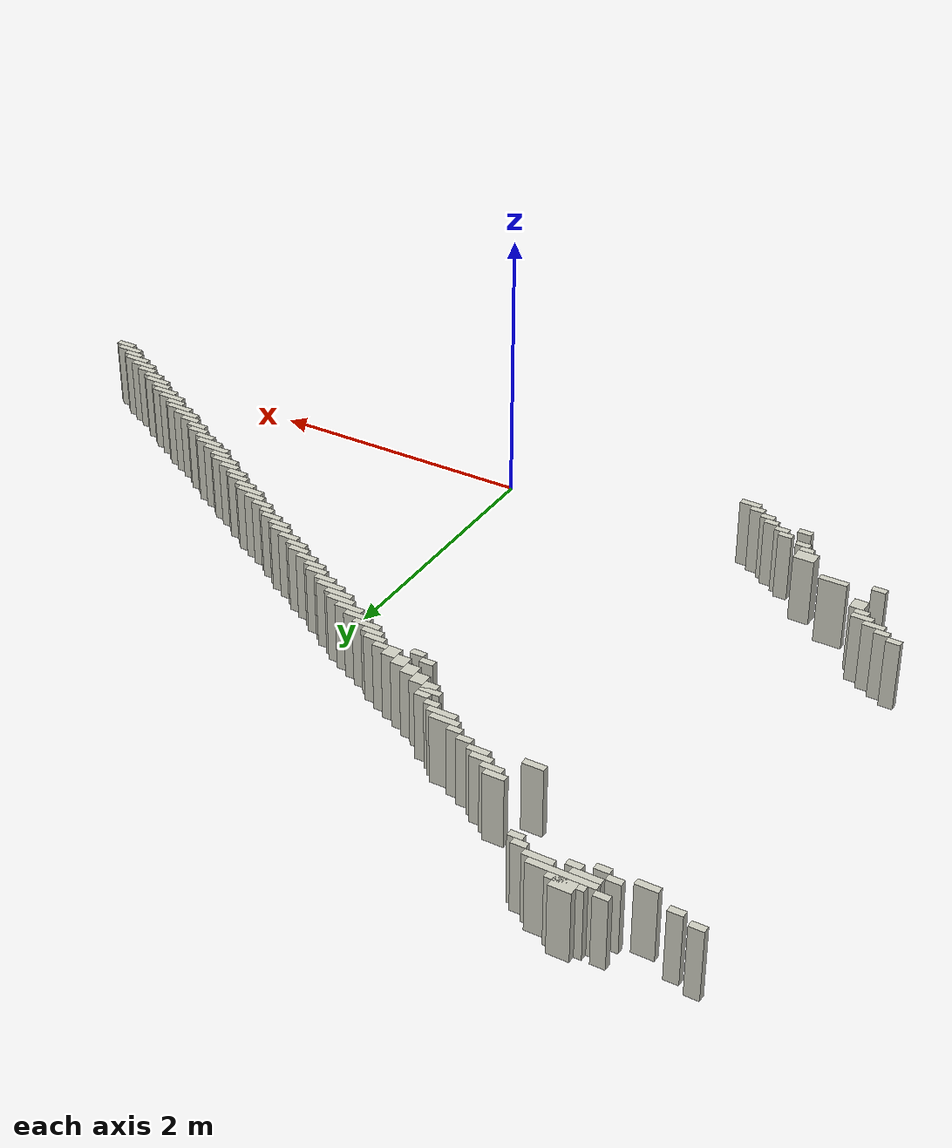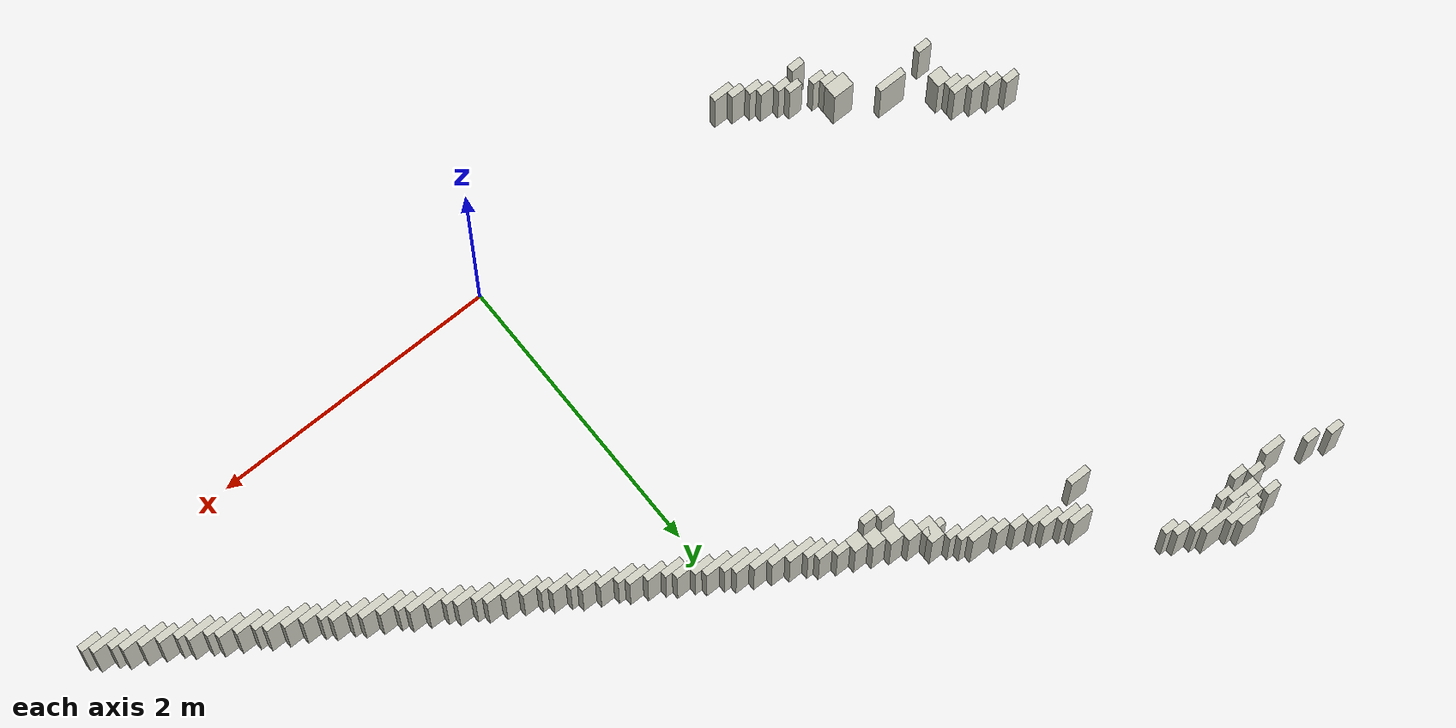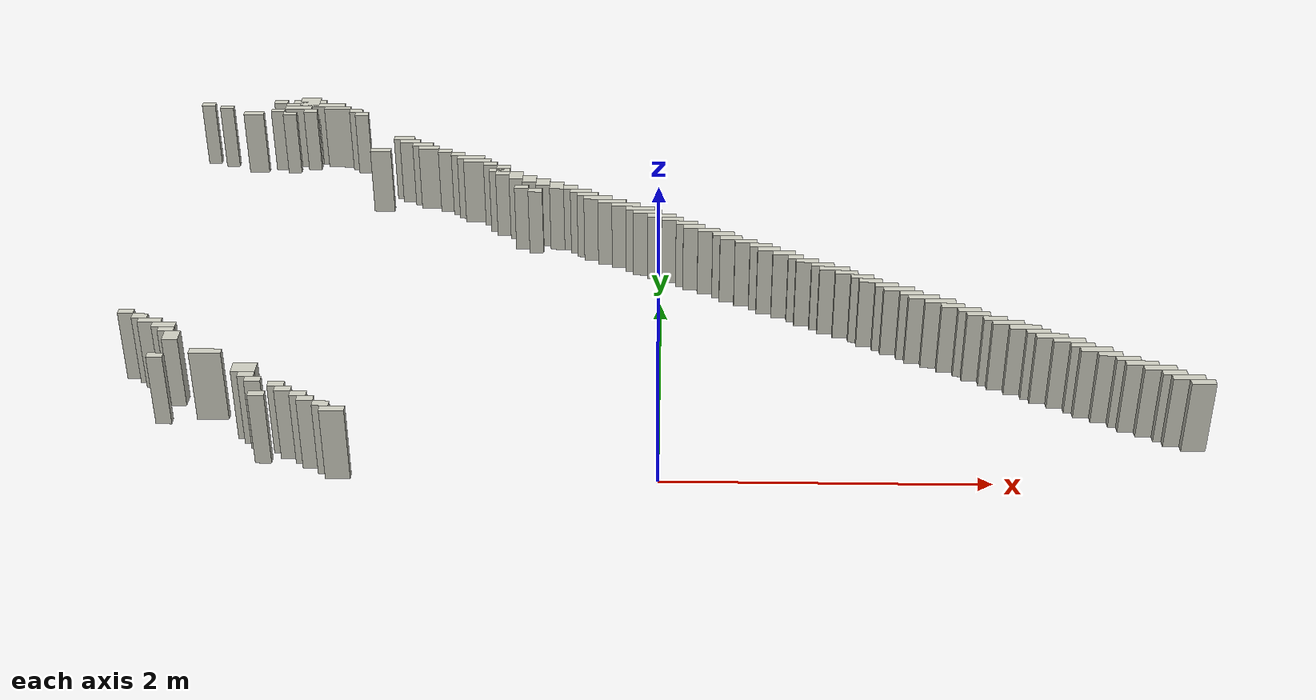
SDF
<sdf version="1.7">
 <world name="my_map_world">
  <model name="wall_0">
   <static>1</static>
   <pose>-2.725 4.125 0.25 0 -0 0</pose>
   <link name="link">
    <collision name="collision"><geometry><box><size>0.15 0.15 0.5</size></box></geometry></collision>
    <visual name="visual">
     <geometry><box><size>0.15 0.15 0.5</size></box></geometry>
     <material>
      <script><uri>file://media/materials/scripts/gazebo.material</uri><name>Gazebo/PaintedWall</name></script>
     </material>
    </visual>
   </link>
  </model>
  <model name="wall_1">
   <static>1</static>
   <pose>-2.95 4.125 0.25 0 -0 0</pose>
   <link name="link">
    <collision name="collision"><geometry><box><size>0.1 0.05 0.5</size></box></geometry></collision>
    <visual name="visual">
     <geometry><box><size>0.1 0.05 0.5</size></box></geometry>
     <material>
      <script><uri>file://media/materials/scripts/gazebo.material</uri><name>Gazebo/PaintedWall</name></script>
     </material>
    </visual>
   </link>
  </model>
  <model name="wall_2">
   <static>1</static>
   <pose>-2.725 4.125 0.25 0 -0 0</pose>
   <link name="link">
    <collision name="collision"><geometry><box><size>0.25 0.05 0.5</size></box></geometry></collision>
    <visual name="visual">
     <geometry><box><size>0.25 0.05 0.5</size></box></geometry>
     <material>
      <script><uri>file://media/materials/scripts/gazebo.material</uri><name>Gazebo/PaintedWall</name></script>
     </material>
    </visual>
   </link>
  </model>
  <model name="wall_3">
   <static>1</static>
   <pose>-3.5 4.075 0.25 0 -0 0</pose>
   <link name="link">
    <collision name="collision"><geometry><box><size>0.1 0.05 0.5</size></box></geometry></collision>
    <visual name="visual">
     <geometry><box><size>0.1 0.05 0.5</size></box></geometry>
     <material>
      <script><uri>file://media/materials/scripts/gazebo.material</uri><name>Gazebo/PaintedWall</name></script>
     </material>
    </visual>
   </link>
  </model>
  <model name="wall_4">
   <static>1</static>
   <pose>-2.675 4.075 0.25 0 -0 0</pose>
   <link name="link">
    <collision name="collision"><geometry><box><size>0.45 0.05 0.5</size></box></geometry></collision>
    <visual name="visual">
     <geometry><box><size>0.45 0.05 0.5</size></box></geometry>
     <material>
      <script><uri>file://media/materials/scripts/gazebo.material</uri><name>Gazebo/PaintedWall</name></script>
     </material>
    </visual>
   </link>
  </model>
  <model name="wall_5">
   <static>1</static>
   <pose>-3.35 4.025 0.25 0 -0 0</pose>
   <link name="link">
    <collision name="collision"><geometry><box><size>0.1 0.05 0.5</size></box></geometry></collision>
    <visual name="visual">
     <geometry><box><size>0.1 0.05 0.5</size></box></geometry>
     <material>
      <script><uri>file://media/materials/scripts/gazebo.material</uri><name>Gazebo/PaintedWall</name></script>
     </material>
    </visual>
   </link>
  </model>
  <model name="wall_6">
   <static>1</static>
   <pose>-2.8 4.025 0.25 0 -0 0</pose>
   <link name="link">
    <collision name="collision"><geometry><box><size>0.2 0.05 0.5</size></box></geometry></collision>
    <visual name="visual">
     <geometry><box><size>0.2 0.05 0.5</size></box></geometry>
     <material>
      <script><uri>file://media/materials/scripts/gazebo.material</uri><name>Gazebo/PaintedWall</name></script>
     </material>
    </visual>
   </link>
  </model>
  <model name="wall_7">
   <static>1</static>
   <pose>-2.5 4.025 0.25 0 -0 0</pose>
   <link name="link">
    <collision name="collision"><geometry><box><size>0.2 0.05 0.5</size></box></geometry></collision>
    <visual name="visual">
     <geometry><box><size>0.2 0.05 0.5</size></box></geometry>
     <material>
      <script><uri>file://media/materials/scripts/gazebo.material</uri><name>Gazebo/PaintedWall</name></script>
     </material>
    </visual>
   </link>
  </model>
  <model name="wall_8">
   <static>1</static>
   <pose>-2.95 3.975 0.25 0 -0 0</pose>
   <link name="link">
    <collision name="collision"><geometry><box><size>0.1 0.05 0.5</size></box></geometry></collision>
    <visual name="visual">
     <geometry><box><size>0.1 0.05 0.5</size></box></geometry>
     <material>
      <script><uri>file://media/materials/scripts/gazebo.material</uri><name>Gazebo/PaintedWall</name></script>
     </material>
    </visual>
   </link>
  </model>
  <model name="wall_9">
   <static>1</static>
   <pose>-2.7 3.975 0.25 0 -0 0</pose>
   <link name="link">
    <collision name="collision"><geometry><box><size>0.1 0.05 0.5</size></box></geometry></collision>
    <visual name="visual">
     <geometry><box><size>0.1 0.05 0.5</size></box></geometry>
     <material>
      <script><uri>file://media/materials/scripts/gazebo.material</uri><name>Gazebo/PaintedWall</name></script>
     </material>
    </visual>
   </link>
  </model>
  <model name="wall_10">
   <static>1</static>
   <pose>-2.35 3.975 0.25 0 -0 0</pose>
   <link name="link">
    <collision name="collision"><geometry><box><size>0.1 0.05 0.5</size></box></geometry></collision>
    <visual name="visual">
     <geometry><box><size>0.1 0.05 0.5</size></box></geometry>
     <material>
      <script><uri>file://media/materials/scripts/gazebo.material</uri><name>Gazebo/PaintedWall</name></script>
     </material>
    </visual>
   </link>
  </model>
  <model name="wall_11">
   <static>1</static>
   <pose>-3.125 3.925 0.25 0 -0 0</pose>
   <link name="link">
    <collision name="collision"><geometry><box><size>0.15 0.05 0.5</size></box></geometry></collision>
    <visual name="visual">
     <geometry><box><size>0.15 0.05 0.5</size></box></geometry>
     <material>
      <script><uri>file://media/materials/scripts/gazebo.material</uri><name>Gazebo/PaintedWall</name></script>
     </material>
    </visual>
   </link>
  </model>
  <model name="wall_12">
   <static>1</static>
   <pose>-2.85 3.925 0.25 0 -0 0</pose>
   <link name="link">
    <collision name="collision"><geometry><box><size>0.1 0.05 0.5</size></box></geometry></collision>
    <visual name="visual">
     <geometry><box><size>0.1 0.05 0.5</size></box></geometry>
     <material>
      <script><uri>file://media/materials/scripts/gazebo.material</uri><name>Gazebo/PaintedWall</name></script>
     </material>
    </visual>
   </link>
  </model>
  <model name="wall_13">
   <static>1</static>
   <pose>-2.3 3.925 0.25 0 -0 0</pose>
   <link name="link">
    <collision name="collision"><geometry><box><size>0.1 0.05 0.5</size></box></geometry></collision>
    <visual name="visual">
     <geometry><box><size>0.1 0.05 0.5</size></box></geometry>
     <material>
      <script><uri>file://media/materials/scripts/gazebo.material</uri><name>Gazebo/PaintedWall</name></script>
     </material>
    </visual>
   </link>
  </model>
  <model name="wall_14">
   <static>1</static>
   <pose>-1.925 3.525 0.25 0 -0 0</pose>
   <link name="link">
    <collision name="collision"><geometry><box><size>0.15 0.05 0.5</size></box></geometry></collision>
    <visual name="visual">
     <geometry><box><size>0.15 0.05 0.5</size></box></geometry>
     <material>
      <script><uri>file://media/materials/scripts/gazebo.material</uri><name>Gazebo/PaintedWall</name></script>
     </material>
    </visual>
   </link>
  </model>
  <model name="wall_15">
   <static>1</static>
   <pose>-1.875 3.475 0.25 0 -0 0</pose>
   <link name="link">
    <collision name="collision"><geometry><box><size>0.15 0.05 0.5</size></box></geometry></collision>
    <visual name="visual">
     <geometry><box><size>0.15 0.05 0.5</size></box></geometry>
     <material>
      <script><uri>file://media/materials/scripts/gazebo.material</uri><name>Gazebo/PaintedWall</name></script>
     </material>
    </visual>
   </link>
  </model>
  <model name="wall_16">
   <static>1</static>
   <pose>-1.775 3.425 0.25 0 -0 0</pose>
   <link name="link">
    <collision name="collision"><geometry><box><size>0.15 0.05 0.5</size></box></geometry></collision>
    <visual name="visual">
     <geometry><box><size>0.15 0.05 0.5</size></box></geometry>
     <material>
      <script><uri>file://media/materials/scripts/gazebo.material</uri><name>Gazebo/PaintedWall</name></script>
     </material>
    </visual>
   </link>
  </model>
  <model name="wall_17">
   <static>1</static>
   <pose>-1.725 3.375 0.25 0 -0 0</pose>
   <link name="link">
    <collision name="collision"><geometry><box><size>0.15 0.05 0.5</size></box></geometry></collision>
    <visual name="visual">
     <geometry><box><size>0.15 0.05 0.5</size></box></geometry>
     <material>
      <script><uri>file://media/materials/scripts/gazebo.material</uri><name>Gazebo/PaintedWall</name></script>
     </material>
    </visual>
   </link>
  </model>
  <model name="wall_18">
   <static>1</static>
   <pose>-2.075 3.325 0.25 0 -0 0</pose>
   <link name="link">
    <collision name="collision"><geometry><box><size>0.15 0.05 0.5</size></box></geometry></collision>
    <visual name="visual">
     <geometry><box><size>0.15 0.05 0.5</size></box></geometry>
     <material>
      <script><uri>file://media/materials/scripts/gazebo.material</uri><name>Gazebo/PaintedWall</name></script>
     </material>
    </visual>
   </link>
  </model>
  <model name="wall_19">
   <static>1</static>
   <pose>-1.6 3.325 0.25 0 -0 0</pose>
   <link name="link">
    <collision name="collision"><geometry><box><size>0.1 0.05 0.5</size></box></geometry></collision>
    <visual name="visual">
     <geometry><box><size>0.1 0.05 0.5</size></box></geometry>
     <material>
      <script><uri>file://media/materials/scripts/gazebo.material</uri><name>Gazebo/PaintedWall</name></script>
     </material>
    </visual>
   </link>
  </model>
  <model name="wall_20">
   <static>1</static>
   <pose>-1.5 3.275 0.25 0 -0 0</pose>
   <link name="link">
    <collision name="collision"><geometry><box><size>0.1 0.05 0.5</size></box></geometry></collision>
    <visual name="visual">
     <geometry><box><size>0.1 0.05 0.5</size></box></geometry>
     <material>
      <script><uri>file://media/materials/scripts/gazebo.material</uri><name>Gazebo/PaintedWall</name></script>
     </material>
    </visual>
   </link>
  </model>
  <model name="wall_21">
   <static>1</static>
   <pose>-1.4 3.225 0.25 0 -0 0</pose>
   <link name="link">
    <collision name="collision"><geometry><box><size>0.2 0.05 0.5</size></box></geometry></collision>
    <visual name="visual">
     <geometry><box><size>0.2 0.05 0.5</size></box></geometry>
     <material>
      <script><uri>file://media/materials/scripts/gazebo.material</uri><name>Gazebo/PaintedWall</name></script>
     </material>
    </visual>
   </link>
  </model>
  <model name="wall_22">
   <static>1</static>
   <pose>-1.35 3.175 0.25 0 -0 0</pose>
   <link name="link">
    <collision name="collision"><geometry><box><size>0.2 0.05 0.5</size></box></geometry></collision>
    <visual name="visual">
     <geometry><box><size>0.2 0.05 0.5</size></box></geometry>
     <material>
      <script><uri>file://media/materials/scripts/gazebo.material</uri><name>Gazebo/PaintedWall</name></script>
     </material>
    </visual>
   </link>
  </model>
  <model name="wall_23">
   <static>1</static>
   <pose>-1.25 3.125 0.25 0 -0 0</pose>
   <link name="link">
    <collision name="collision"><geometry><box><size>0.1 0.05 0.5</size></box></geometry></collision>
    <visual name="visual">
     <geometry><box><size>0.1 0.05 0.5</size></box></geometry>
     <material>
      <script><uri>file://media/materials/scripts/gazebo.material</uri><name>Gazebo/PaintedWall</name></script>
     </material>
    </visual>
   </link>
  </model>
  <model name="wall_24">
   <static>1</static>
   <pose>-1.15 3.025 0.25 0 -0 0</pose>
   <link name="link">
    <collision name="collision"><geometry><box><size>0.1 0.15 0.5</size></box></geometry></collision>
    <visual name="visual">
     <geometry><box><size>0.1 0.15 0.5</size></box></geometry>
     <material>
      <script><uri>file://media/materials/scripts/gazebo.material</uri><name>Gazebo/PaintedWall</name></script>
     </material>
    </visual>
   </link>
  </model>
  <model name="wall_25">
   <static>1</static>
   <pose>-1.175 3.025 0.25 0 -0 0</pose>
   <link name="link">
    <collision name="collision"><geometry><box><size>0.15 0.05 0.5</size></box></geometry></collision>
    <visual name="visual">
     <geometry><box><size>0.15 0.05 0.5</size></box></geometry>
     <material>
      <script><uri>file://media/materials/scripts/gazebo.material</uri><name>Gazebo/PaintedWall</name></script>
     </material>
    </visual>
   </link>
  </model>
  <model name="wall_26">
   <static>1</static>
   <pose>-1.05 2.95 0.25 0 -0 0</pose>
   <link name="link">
    <collision name="collision"><geometry><box><size>0.1 0.1 0.5</size></box></geometry></collision>
    <visual name="visual">
     <geometry><box><size>0.1 0.1 0.5</size></box></geometry>
     <material>
      <script><uri>file://media/materials/scripts/gazebo.material</uri><name>Gazebo/PaintedWall</name></script>
     </material>
    </visual>
   </link>
  </model>
  <model name="wall_27">
   <static>1</static>
   <pose>-0.95 2.9 0.25 0 -0 0</pose>
   <link name="link">
    <collision name="collision"><geometry><box><size>0.1 0.1 0.5</size></box></geometry></collision>
    <visual name="visual">
     <geometry><box><size>0.1 0.1 0.5</size></box></geometry>
     <material>
      <script><uri>file://media/materials/scripts/gazebo.material</uri><name>Gazebo/PaintedWall</name></script>
     </material>
    </visual>
   </link>
  </model>
  <model name="wall_28">
   <static>1</static>
   <pose>-0.85 2.85 0.25 0 -0 0</pose>
   <link name="link">
    <collision name="collision"><geometry><box><size>0.1 0.1 0.5</size></box></geometry></collision>
    <visual name="visual">
     <geometry><box><size>0.1 0.1 0.5</size></box></geometry>
     <material>
      <script><uri>file://media/materials/scripts/gazebo.material</uri><name>Gazebo/PaintedWall</name></script>
     </material>
    </visual>
   </link>
  </model>
  <model name="wall_29">
   <static>1</static>
   <pose>-0.75 2.8 0.25 0 -0 0</pose>
   <link name="link">
    <collision name="collision"><geometry><box><size>0.1 0.1 0.5</size></box></geometry></collision>
    <visual name="visual">
     <geometry><box><size>0.1 0.1 0.5</size></box></geometry>
     <material>
      <script><uri>file://media/materials/scripts/gazebo.material</uri><name>Gazebo/PaintedWall</name></script>
     </material>
    </visual>
   </link>
  </model>
  <model name="wall_30">
   <static>1</static>
   <pose>-1 2.775 0.25 0 -0 0</pose>
   <link name="link">
    <collision name="collision"><geometry><box><size>0.1 0.05 0.5</size></box></geometry></collision>
    <visual name="visual">
     <geometry><box><size>0.1 0.05 0.5</size></box></geometry>
     <material>
      <script><uri>file://media/materials/scripts/gazebo.material</uri><name>Gazebo/PaintedWall</name></script>
     </material>
    </visual>
   </link>
  </model>
  <model name="wall_31">
   <static>1</static>
   <pose>-0.65 2.775 0.25 0 -0 0</pose>
   <link name="link">
    <collision name="collision"><geometry><box><size>0.1 0.05 0.5</size></box></geometry></collision>
    <visual name="visual">
     <geometry><box><size>0.1 0.05 0.5</size></box></geometry>
     <material>
      <script><uri>file://media/materials/scripts/gazebo.material</uri><name>Gazebo/PaintedWall</name></script>
     </material>
    </visual>
   </link>
  </model>
  <model name="wall_32">
   <static>1</static>
   <pose>-0.9 2.725 0.25 0 -0 0</pose>
   <link name="link">
    <collision name="collision"><geometry><box><size>0.1 0.05 0.5</size></box></geometry></collision>
    <visual name="visual">
     <geometry><box><size>0.1 0.05 0.5</size></box></geometry>
     <material>
      <script><uri>file://media/materials/scripts/gazebo.material</uri><name>Gazebo/PaintedWall</name></script>
     </material>
    </visual>
   </link>
  </model>
  <model name="wall_33">
   <static>1</static>
   <pose>-0.575 2.725 0.25 0 -0 0</pose>
   <link name="link">
    <collision name="collision"><geometry><box><size>0.15 0.05 0.5</size></box></geometry></collision>
    <visual name="visual">
     <geometry><box><size>0.15 0.05 0.5</size></box></geometry>
     <material>
      <script><uri>file://media/materials/scripts/gazebo.material</uri><name>Gazebo/PaintedWall</name></script>
     </material>
    </visual>
   </link>
  </model>
  <model name="wall_34">
   <static>1</static>
   <pose>-0.525 2.675 0.25 0 -0 0</pose>
   <link name="link">
    <collision name="collision"><geometry><box><size>0.15 0.05 0.5</size></box></geometry></collision>
    <visual name="visual">
     <geometry><box><size>0.15 0.05 0.5</size></box></geometry>
     <material>
      <script><uri>file://media/materials/scripts/gazebo.material</uri><name>Gazebo/PaintedWall</name></script>
     </material>
    </visual>
   </link>
  </model>
  <model name="wall_35">
   <static>1</static>
   <pose>-0.45 2.625 0.25 0 -0 0</pose>
   <link name="link">
    <collision name="collision"><geometry><box><size>0.2 0.05 0.5</size></box></geometry></collision>
    <visual name="visual">
     <geometry><box><size>0.2 0.05 0.5</size></box></geometry>
     <material>
      <script><uri>file://media/materials/scripts/gazebo.material</uri><name>Gazebo/PaintedWall</name></script>
     </material>
    </visual>
   </link>
  </model>
  <model name="wall_36">
   <static>1</static>
   <pose>-0.35 2.575 0.25 0 -0 0</pose>
   <link name="link">
    <collision name="collision"><geometry><box><size>0.2 0.05 0.5</size></box></geometry></collision>
    <visual name="visual">
     <geometry><box><size>0.2 0.05 0.5</size></box></geometry>
     <material>
      <script><uri>file://media/materials/scripts/gazebo.material</uri><name>Gazebo/PaintedWall</name></script>
     </material>
    </visual>
   </link>
  </model>
  <model name="wall_37">
   <static>1</static>
   <pose>-0.25 2.525 0.25 0 -0 0</pose>
   <link name="link">
    <collision name="collision"><geometry><box><size>0.2 0.05 0.5</size></box></geometry></collision>
    <visual name="visual">
     <geometry><box><size>0.2 0.05 0.5</size></box></geometry>
     <material>
      <script><uri>file://media/materials/scripts/gazebo.material</uri><name>Gazebo/PaintedWall</name></script>
     </material>
    </visual>
   </link>
  </model>
  <model name="wall_38">
   <static>1</static>
   <pose>-0.15 2.475 0.25 0 -0 0</pose>
   <link name="link">
    <collision name="collision"><geometry><box><size>0.2 0.05 0.5</size></box></geometry></collision>
    <visual name="visual">
     <geometry><box><size>0.2 0.05 0.5</size></box></geometry>
     <material>
      <script><uri>file://media/materials/scripts/gazebo.material</uri><name>Gazebo/PaintedWall</name></script>
     </material>
    </visual>
   </link>
  </model>
  <model name="wall_39">
   <static>1</static>
   <pose>-0.1 2.425 0.25 0 -0 0</pose>
   <link name="link">
    <collision name="collision"><geometry><box><size>0.2 0.05 0.5</size></box></geometry></collision>
    <visual name="visual">
     <geometry><box><size>0.2 0.05 0.5</size></box></geometry>
     <material>
      <script><uri>file://media/materials/scripts/gazebo.material</uri><name>Gazebo/PaintedWall</name></script>
     </material>
    </visual>
   </link>
  </model>
  <model name="wall_40">
   <static>1</static>
   <pose>0 2.375 0.25 0 -0 0</pose>
   <link name="link">
    <collision name="collision"><geometry><box><size>0.2 0.05 0.5</size></box></geometry></collision>
    <visual name="visual">
     <geometry><box><size>0.2 0.05 0.5</size></box></geometry>
     <material>
      <script><uri>file://media/materials/scripts/gazebo.material</uri><name>Gazebo/PaintedWall</name></script>
     </material>
    </visual>
   </link>
  </model>
  <model name="wall_41">
   <static>1</static>
   <pose>0.075 2.325 0.25 0 -0 0</pose>
   <link name="link">
    <collision name="collision"><geometry><box><size>0.15 0.05 0.5</size></box></geometry></collision>
    <visual name="visual">
     <geometry><box><size>0.15 0.05 0.5</size></box></geometry>
     <material>
      <script><uri>file://media/materials/scripts/gazebo.material</uri><name>Gazebo/PaintedWall</name></script>
     </material>
    </visual>
   </link>
  </model>
  <model name="wall_42">
   <static>1</static>
   <pose>0.175 2.275 0.25 0 -0 0</pose>
   <link name="link">
    <collision name="collision"><geometry><box><size>0.15 0.05 0.5</size></box></geometry></collision>
    <visual name="visual">
     <geometry><box><size>0.15 0.05 0.5</size></box></geometry>
     <material>
      <script><uri>file://media/materials/scripts/gazebo.material</uri><name>Gazebo/PaintedWall</name></script>
     </material>
    </visual>
   </link>
  </model>
  <model name="wall_43">
   <static>1</static>
   <pose>0.225 2.225 0.25 0 -0 0</pose>
   <link name="link">
    <collision name="collision"><geometry><box><size>0.15 0.05 0.5</size></box></geometry></collision>
    <visual name="visual">
     <geometry><box><size>0.15 0.05 0.5</size></box></geometry>
     <material>
      <script><uri>file://media/materials/scripts/gazebo.material</uri><name>Gazebo/PaintedWall</name></script>
     </material>
    </visual>
   </link>
  </model>
  <model name="wall_44">
   <static>1</static>
   <pose>0.325 2.175 0.25 0 -0 0</pose>
   <link name="link">
    <collision name="collision"><geometry><box><size>0.15 0.05 0.5</size></box></geometry></collision>
    <visual name="visual">
     <geometry><box><size>0.15 0.05 0.5</size></box></geometry>
     <material>
      <script><uri>file://media/materials/scripts/gazebo.material</uri><name>Gazebo/PaintedWall</name></script>
     </material>
    </visual>
   </link>
  </model>
  <model name="wall_45">
   <static>1</static>
   <pose>0.425 2.125 0.25 0 -0 0</pose>
   <link name="link">
    <collision name="collision"><geometry><box><size>0.15 0.05 0.5</size></box></geometry></collision>
    <visual name="visual">
     <geometry><box><size>0.15 0.05 0.5</size></box></geometry>
     <material>
      <script><uri>file://media/materials/scripts/gazebo.material</uri><name>Gazebo/PaintedWall</name></script>
     </material>
    </visual>
   </link>
  </model>
  <model name="wall_46">
   <static>1</static>
   <pose>0.475 2.075 0.25 0 -0 0</pose>
   <link name="link">
    <collision name="collision"><geometry><box><size>0.15 0.05 0.5</size></box></geometry></collision>
    <visual name="visual">
     <geometry><box><size>0.15 0.05 0.5</size></box></geometry>
     <material>
      <script><uri>file://media/materials/scripts/gazebo.material</uri><name>Gazebo/PaintedWall</name></script>
     </material>
    </visual>
   </link>
  </model>
  <model name="wall_47">
   <static>1</static>
   <pose>0.575 2.025 0.25 0 -0 0</pose>
   <link name="link">
    <collision name="collision"><geometry><box><size>0.15 0.05 0.5</size></box></geometry></collision>
    <visual name="visual">
     <geometry><box><size>0.15 0.05 0.5</size></box></geometry>
     <material>
      <script><uri>file://media/materials/scripts/gazebo.material</uri><name>Gazebo/PaintedWall</name></script>
     </material>
    </visual>
   </link>
  </model>
  <model name="wall_48">
   <static>1</static>
   <pose>0.675 1.975 0.25 0 -0 0</pose>
   <link name="link">
    <collision name="collision"><geometry><box><size>0.15 0.05 0.5</size></box></geometry></collision>
    <visual name="visual">
     <geometry><box><size>0.15 0.05 0.5</size></box></geometry>
     <material>
      <script><uri>file://media/materials/scripts/gazebo.material</uri><name>Gazebo/PaintedWall</name></script>
     </material>
    </visual>
   </link>
  </model>
  <model name="wall_49">
   <static>1</static>
   <pose>0.725 1.925 0.25 0 -0 0</pose>
   <link name="link">
    <collision name="collision"><geometry><box><size>0.15 0.05 0.5</size></box></geometry></collision>
    <visual name="visual">
     <geometry><box><size>0.15 0.05 0.5</size></box></geometry>
     <material>
      <script><uri>file://media/materials/scripts/gazebo.material</uri><name>Gazebo/PaintedWall</name></script>
     </material>
    </visual>
   </link>
  </model>
  <model name="wall_50">
   <static>1</static>
   <pose>0.825 1.875 0.25 0 -0 0</pose>
   <link name="link">
    <collision name="collision"><geometry><box><size>0.15 0.05 0.5</size></box></geometry></collision>
    <visual name="visual">
     <geometry><box><size>0.15 0.05 0.5</size></box></geometry>
     <material>
      <script><uri>file://media/materials/scripts/gazebo.material</uri><name>Gazebo/PaintedWall</name></script>
     </material>
    </visual>
   </link>
  </model>
  <model name="wall_51">
   <static>1</static>
   <pose>0.9 1.825 0.25 0 -0 0</pose>
   <link name="link">
    <collision name="collision"><geometry><box><size>0.1 0.05 0.5</size></box></geometry></collision>
    <visual name="visual">
     <geometry><box><size>0.1 0.05 0.5</size></box></geometry>
     <material>
      <script><uri>file://media/materials/scripts/gazebo.material</uri><name>Gazebo/PaintedWall</name></script>
     </material>
    </visual>
   </link>
  </model>
  <model name="wall_52">
   <static>1</static>
   <pose>0.975 1.775 0.25 0 -0 0</pose>
   <link name="link">
    <collision name="collision"><geometry><box><size>0.15 0.05 0.5</size></box></geometry></collision>
    <visual name="visual">
     <geometry><box><size>0.15 0.05 0.5</size></box></geometry>
     <material>
      <script><uri>file://media/materials/scripts/gazebo.material</uri><name>Gazebo/PaintedWall</name></script>
     </material>
    </visual>
   </link>
  </model>
  <model name="wall_53">
   <static>1</static>
   <pose>1.075 1.725 0.25 0 -0 0</pose>
   <link name="link">
    <collision name="collision"><geometry><box><size>0.15 0.05 0.5</size></box></geometry></collision>
    <visual name="visual">
     <geometry><box><size>0.15 0.05 0.5</size></box></geometry>
     <material>
      <script><uri>file://media/materials/scripts/gazebo.material</uri><name>Gazebo/PaintedWall</name></script>
     </material>
    </visual>
   </link>
  </model>
  <model name="wall_54">
   <static>1</static>
   <pose>1.15 1.675 0.25 0 -0 0</pose>
   <link name="link">
    <collision name="collision"><geometry><box><size>0.2 0.05 0.5</size></box></geometry></collision>
    <visual name="visual">
     <geometry><box><size>0.2 0.05 0.5</size></box></geometry>
     <material>
      <script><uri>file://media/materials/scripts/gazebo.material</uri><name>Gazebo/PaintedWall</name></script>
     </material>
    </visual>
   </link>
  </model>
  <model name="wall_55">
   <static>1</static>
   <pose>1.225 1.625 0.25 0 -0 0</pose>
   <link name="link">
    <collision name="collision"><geometry><box><size>0.15 0.05 0.5</size></box></geometry></collision>
    <visual name="visual">
     <geometry><box><size>0.15 0.05 0.5</size></box></geometry>
     <material>
      <script><uri>file://media/materials/scripts/gazebo.material</uri><name>Gazebo/PaintedWall</name></script>
     </material>
    </visual>
   </link>
  </model>
  <model name="wall_56">
   <static>1</static>
   <pose>1.325 1.575 0.25 0 -0 0</pose>
   <link name="link">
    <collision name="collision"><geometry><box><size>0.15 0.05 0.5</size></box></geometry></collision>
    <visual name="visual">
     <geometry><box><size>0.15 0.05 0.5</size></box></geometry>
     <material>
      <script><uri>file://media/materials/scripts/gazebo.material</uri><name>Gazebo/PaintedWall</name></script>
     </material>
    </visual>
   </link>
  </model>
  <model name="wall_57">
   <static>1</static>
   <pose>1.375 1.525 0.25 0 -0 0</pose>
   <link name="link">
    <collision name="collision"><geometry><box><size>0.15 0.05 0.5</size></box></geometry></collision>
    <visual name="visual">
     <geometry><box><size>0.15 0.05 0.5</size></box></geometry>
     <material>
      <script><uri>file://media/materials/scripts/gazebo.material</uri><name>Gazebo/PaintedWall</name></script>
     </material>
    </visual>
   </link>
  </model>
  <model name="wall_58">
   <static>1</static>
   <pose>1.475 1.475 0.25 0 -0 0</pose>
   <link name="link">
    <collision name="collision"><geometry><box><size>0.15 0.05 0.5</size></box></geometry></collision>
    <visual name="visual">
     <geometry><box><size>0.15 0.05 0.5</size></box></geometry>
     <material>
      <script><uri>file://media/materials/scripts/gazebo.material</uri><name>Gazebo/PaintedWall</name></script>
     </material>
    </visual>
   </link>
  </model>
  <model name="wall_59">
   <static>1</static>
   <pose>1.55 1.425 0.25 0 -0 0</pose>
   <link name="link">
    <collision name="collision"><geometry><box><size>0.2 0.05 0.5</size></box></geometry></collision>
    <visual name="visual">
     <geometry><box><size>0.2 0.05 0.5</size></box></geometry>
     <material>
      <script><uri>file://media/materials/scripts/gazebo.material</uri><name>Gazebo/PaintedWall</name></script>
     </material>
    </visual>
   </link>
  </model>
  <model name="wall_60">
   <static>1</static>
   <pose>1.625 1.375 0.25 0 -0 0</pose>
   <link name="link">
    <collision name="collision"><geometry><box><size>0.15 0.05 0.5</size></box></geometry></collision>
    <visual name="visual">
     <geometry><box><size>0.15 0.05 0.5</size></box></geometry>
     <material>
      <script><uri>file://media/materials/scripts/gazebo.material</uri><name>Gazebo/PaintedWall</name></script>
     </material>
    </visual>
   </link>
  </model>
  <model name="wall_61">
   <static>1</static>
   <pose>1.7 1.325 0.25 0 -0 0</pose>
   <link name="link">
    <collision name="collision"><geometry><box><size>0.2 0.05 0.5</size></box></geometry></collision>
    <visual name="visual">
     <geometry><box><size>0.2 0.05 0.5</size></box></geometry>
     <material>
      <script><uri>file://media/materials/scripts/gazebo.material</uri><name>Gazebo/PaintedWall</name></script>
     </material>
    </visual>
   </link>
  </model>
  <model name="wall_62">
   <static>1</static>
   <pose>1.8 1.275 0.25 0 -0 0</pose>
   <link name="link">
    <collision name="collision"><geometry><box><size>0.2 0.05 0.5</size></box></geometry></collision>
    <visual name="visual">
     <geometry><box><size>0.2 0.05 0.5</size></box></geometry>
     <material>
      <script><uri>file://media/materials/scripts/gazebo.material</uri><name>Gazebo/PaintedWall</name></script>
     </material>
    </visual>
   </link>
  </model>
  <model name="wall_63">
   <static>1</static>
   <pose>1.875 1.225 0.25 0 -0 0</pose>
   <link name="link">
    <collision name="collision"><geometry><box><size>0.15 0.05 0.5</size></box></geometry></collision>
    <visual name="visual">
     <geometry><box><size>0.15 0.05 0.5</size></box></geometry>
     <material>
      <script><uri>file://media/materials/scripts/gazebo.material</uri><name>Gazebo/PaintedWall</name></script>
     </material>
    </visual>
   </link>
  </model>
  <model name="wall_64">
   <static>1</static>
   <pose>1.975 1.175 0.25 0 -0 0</pose>
   <link name="link">
    <collision name="collision"><geometry><box><size>0.15 0.05 0.5</size></box></geometry></collision>
    <visual name="visual">
     <geometry><box><size>0.15 0.05 0.5</size></box></geometry>
     <material>
      <script><uri>file://media/materials/scripts/gazebo.material</uri><name>Gazebo/PaintedWall</name></script>
     </material>
    </visual>
   </link>
  </model>
  <model name="wall_65">
   <static>1</static>
   <pose>2.025 1.125 0.25 0 -0 0</pose>
   <link name="link">
    <collision name="collision"><geometry><box><size>0.15 0.05 0.5</size></box></geometry></collision>
    <visual name="visual">
     <geometry><box><size>0.15 0.05 0.5</size></box></geometry>
     <material>
      <script><uri>file://media/materials/scripts/gazebo.material</uri><name>Gazebo/PaintedWall</name></script>
     </material>
    </visual>
   </link>
  </model>
  <model name="wall_66">
   <static>1</static>
   <pose>-3.4 1.075 0.25 0 -0 0</pose>
   <link name="link">
    <collision name="collision"><geometry><box><size>0.1 0.05 0.5</size></box></geometry></collision>
    <visual name="visual">
     <geometry><box><size>0.1 0.05 0.5</size></box></geometry>
     <material>
      <script><uri>file://media/materials/scripts/gazebo.material</uri><name>Gazebo/PaintedWall</name></script>
     </material>
    </visual>
   </link>
  </model>
  <model name="wall_67">
   <static>1</static>
   <pose>2.125 1.075 0.25 0 -0 0</pose>
   <link name="link">
    <collision name="collision"><geometry><box><size>0.15 0.05 0.5</size></box></geometry></collision>
    <visual name="visual">
     <geometry><box><size>0.15 0.05 0.5</size></box></geometry>
     <material>
      <script><uri>file://media/materials/scripts/gazebo.material</uri><name>Gazebo/PaintedWall</name></script>
     </material>
    </visual>
   </link>
  </model>
  <model name="wall_68">
   <static>1</static>
   <pose>-3.3 1.025 0.25 0 -0 0</pose>
   <link name="link">
    <collision name="collision"><geometry><box><size>0.1 0.05 0.5</size></box></geometry></collision>
    <visual name="visual">
     <geometry><box><size>0.1 0.05 0.5</size></box></geometry>
     <material>
      <script><uri>file://media/materials/scripts/gazebo.material</uri><name>Gazebo/PaintedWall</name></script>
     </material>
    </visual>
   </link>
  </model>
  <model name="wall_69">
   <static>1</static>
   <pose>2.2 1.025 0.25 0 -0 0</pose>
   <link name="link">
    <collision name="collision"><geometry><box><size>0.2 0.05 0.5</size></box></geometry></collision>
    <visual name="visual">
     <geometry><box><size>0.2 0.05 0.5</size></box></geometry>
     <material>
      <script><uri>file://media/materials/scripts/gazebo.material</uri><name>Gazebo/PaintedWall</name></script>
     </material>
    </visual>
   </link>
  </model>
  <model name="wall_70">
   <static>1</static>
   <pose>-3.225 0.975 0.25 0 -0 0</pose>
   <link name="link">
    <collision name="collision"><geometry><box><size>0.15 0.05 0.5</size></box></geometry></collision>
    <visual name="visual">
     <geometry><box><size>0.15 0.05 0.5</size></box></geometry>
     <material>
      <script><uri>file://media/materials/scripts/gazebo.material</uri><name>Gazebo/PaintedWall</name></script>
     </material>
    </visual>
   </link>
  </model>
  <model name="wall_71">
   <static>1</static>
   <pose>2.3 0.975 0.25 0 -0 0</pose>
   <link name="link">
    <collision name="collision"><geometry><box><size>0.2 0.05 0.5</size></box></geometry></collision>
    <visual name="visual">
     <geometry><box><size>0.2 0.05 0.5</size></box></geometry>
     <material>
      <script><uri>file://media/materials/scripts/gazebo.material</uri><name>Gazebo/PaintedWall</name></script>
     </material>
    </visual>
   </link>
  </model>
  <model name="wall_72">
   <static>1</static>
   <pose>-3.125 0.925 0.25 0 -0 0</pose>
   <link name="link">
    <collision name="collision"><geometry><box><size>0.15 0.05 0.5</size></box></geometry></collision>
    <visual name="visual">
     <geometry><box><size>0.15 0.05 0.5</size></box></geometry>
     <material>
      <script><uri>file://media/materials/scripts/gazebo.material</uri><name>Gazebo/PaintedWall</name></script>
     </material>
    </visual>
   </link>
  </model>
  <model name="wall_73">
   <static>1</static>
   <pose>2.375 0.925 0.25 0 -0 0</pose>
   <link name="link">
    <collision name="collision"><geometry><box><size>0.15 0.05 0.5</size></box></geometry></collision>
    <visual name="visual">
     <geometry><box><size>0.15 0.05 0.5</size></box></geometry>
     <material>
      <script><uri>file://media/materials/scripts/gazebo.material</uri><name>Gazebo/PaintedWall</name></script>
     </material>
    </visual>
   </link>
  </model>
  <model name="wall_74">
   <static>1</static>
   <pose>-3.1 0.875 0.25 0 -0 0</pose>
   <link name="link">
    <collision name="collision"><geometry><box><size>0.1 0.05 0.5</size></box></geometry></collision>
    <visual name="visual">
     <geometry><box><size>0.1 0.05 0.5</size></box></geometry>
     <material>
      <script><uri>file://media/materials/scripts/gazebo.material</uri><name>Gazebo/PaintedWall</name></script>
     </material>
    </visual>
   </link>
  </model>
  <model name="wall_75">
   <static>1</static>
   <pose>2.45 0.875 0.25 0 -0 0</pose>
   <link name="link">
    <collision name="collision"><geometry><box><size>0.2 0.05 0.5</size></box></geometry></collision>
    <visual name="visual">
     <geometry><box><size>0.2 0.05 0.5</size></box></geometry>
     <material>
      <script><uri>file://media/materials/scripts/gazebo.material</uri><name>Gazebo/PaintedWall</name></script>
     </material>
    </visual>
   </link>
  </model>
  <model name="wall_76">
   <static>1</static>
   <pose>-3.05 0.8 0.25 0 -0 0</pose>
   <link name="link">
    <collision name="collision"><geometry><box><size>0.1 0.1 0.5</size></box></geometry></collision>
    <visual name="visual">
     <geometry><box><size>0.1 0.1 0.5</size></box></geometry>
     <material>
      <script><uri>file://media/materials/scripts/gazebo.material</uri><name>Gazebo/PaintedWall</name></script>
     </material>
    </visual>
   </link>
  </model>
  <model name="wall_77">
   <static>1</static>
   <pose>2.55 0.825 0.25 0 -0 0</pose>
   <link name="link">
    <collision name="collision"><geometry><box><size>0.2 0.05 0.5</size></box></geometry></collision>
    <visual name="visual">
     <geometry><box><size>0.2 0.05 0.5</size></box></geometry>
     <material>
      <script><uri>file://media/materials/scripts/gazebo.material</uri><name>Gazebo/PaintedWall</name></script>
     </material>
    </visual>
   </link>
  </model>
  <model name="wall_78">
   <static>1</static>
   <pose>2.625 0.775 0.25 0 -0 0</pose>
   <link name="link">
    <collision name="collision"><geometry><box><size>0.15 0.05 0.5</size></box></geometry></collision>
    <visual name="visual">
     <geometry><box><size>0.15 0.05 0.5</size></box></geometry>
     <material>
      <script><uri>file://media/materials/scripts/gazebo.material</uri><name>Gazebo/PaintedWall</name></script>
     </material>
    </visual>
   </link>
  </model>
  <model name="wall_79">
   <static>1</static>
   <pose>2.7 0.725 0.25 0 -0 0</pose>
   <link name="link">
    <collision name="collision"><geometry><box><size>0.2 0.05 0.5</size></box></geometry></collision>
    <visual name="visual">
     <geometry><box><size>0.2 0.05 0.5</size></box></geometry>
     <material>
      <script><uri>file://media/materials/scripts/gazebo.material</uri><name>Gazebo/PaintedWall</name></script>
     </material>
    </visual>
   </link>
  </model>
  <model name="wall_80">
   <static>1</static>
   <pose>2.775 0.675 0.25 0 -0 0</pose>
   <link name="link">
    <collision name="collision"><geometry><box><size>0.15 0.05 0.5</size></box></geometry></collision>
    <visual name="visual">
     <geometry><box><size>0.15 0.05 0.5</size></box></geometry>
     <material>
      <script><uri>file://media/materials/scripts/gazebo.material</uri><name>Gazebo/PaintedWall</name></script>
     </material>
    </visual>
   </link>
  </model>
  <model name="wall_81">
   <static>1</static>
   <pose>-2.8 0.625 0.25 0 -0 0</pose>
   <link name="link">
    <collision name="collision"><geometry><box><size>0.2 0.05 0.5</size></box></geometry></collision>
    <visual name="visual">
     <geometry><box><size>0.2 0.05 0.5</size></box></geometry>
     <material>
      <script><uri>file://media/materials/scripts/gazebo.material</uri><name>Gazebo/PaintedWall</name></script>
     </material>
    </visual>
   </link>
  </model>
  <model name="wall_82">
   <static>1</static>
   <pose>2.875 0.625 0.25 0 -0 0</pose>
   <link name="link">
    <collision name="collision"><geometry><box><size>0.15 0.05 0.5</size></box></geometry></collision>
    <visual name="visual">
     <geometry><box><size>0.15 0.05 0.5</size></box></geometry>
     <material>
      <script><uri>file://media/materials/scripts/gazebo.material</uri><name>Gazebo/PaintedWall</name></script>
     </material>
    </visual>
   </link>
  </model>
  <model name="wall_83">
   <static>1</static>
   <pose>-3.1 0.575 0.25 0 -0 0</pose>
   <link name="link">
    <collision name="collision"><geometry><box><size>0.1 0.05 0.5</size></box></geometry></collision>
    <visual name="visual">
     <geometry><box><size>0.1 0.05 0.5</size></box></geometry>
     <material>
      <script><uri>file://media/materials/scripts/gazebo.material</uri><name>Gazebo/PaintedWall</name></script>
     </material>
    </visual>
   </link>
  </model>
  <model name="wall_84">
   <static>1</static>
   <pose>2.95 0.575 0.25 0 -0 0</pose>
   <link name="link">
    <collision name="collision"><geometry><box><size>0.2 0.05 0.5</size></box></geometry></collision>
    <visual name="visual">
     <geometry><box><size>0.2 0.05 0.5</size></box></geometry>
     <material>
      <script><uri>file://media/materials/scripts/gazebo.material</uri><name>Gazebo/PaintedWall</name></script>
     </material>
    </visual>
   </link>
  </model>
  <model name="wall_85">
   <static>1</static>
   <pose>3.05 0.525 0.25 0 -0 0</pose>
   <link name="link">
    <collision name="collision"><geometry><box><size>0.2 0.05 0.5</size></box></geometry></collision>
    <visual name="visual">
     <geometry><box><size>0.2 0.05 0.5</size></box></geometry>
     <material>
      <script><uri>file://media/materials/scripts/gazebo.material</uri><name>Gazebo/PaintedWall</name></script>
     </material>
    </visual>
   </link>
  </model>
  <model name="wall_86">
   <static>1</static>
   <pose>-2.525 0.45 0.25 0 -0 0</pose>
   <link name="link">
    <collision name="collision"><geometry><box><size>0.15 0.1 0.5</size></box></geometry></collision>
    <visual name="visual">
     <geometry><box><size>0.15 0.1 0.5</size></box></geometry>
     <material>
      <script><uri>file://media/materials/scripts/gazebo.material</uri><name>Gazebo/PaintedWall</name></script>
     </material>
    </visual>
   </link>
  </model>
  <model name="wall_87">
   <static>1</static>
   <pose>3.125 0.475 0.25 0 -0 0</pose>
   <link name="link">
    <collision name="collision"><geometry><box><size>0.15 0.05 0.5</size></box></geometry></collision>
    <visual name="visual">
     <geometry><box><size>0.15 0.05 0.5</size></box></geometry>
     <material>
      <script><uri>file://media/materials/scripts/gazebo.material</uri><name>Gazebo/PaintedWall</name></script>
     </material>
    </visual>
   </link>
  </model>
  <model name="wall_88">
   <static>1</static>
   <pose>3.2 0.425 0.25 0 -0 0</pose>
   <link name="link">
    <collision name="collision"><geometry><box><size>0.2 0.05 0.5</size></box></geometry></collision>
    <visual name="visual">
     <geometry><box><size>0.2 0.05 0.5</size></box></geometry>
     <material>
      <script><uri>file://media/materials/scripts/gazebo.material</uri><name>Gazebo/PaintedWall</name></script>
     </material>
    </visual>
   </link>
  </model>
  <model name="wall_89">
   <static>1</static>
   <pose>-2.5 0.375 0.25 0 -0 0</pose>
   <link name="link">
    <collision name="collision"><geometry><box><size>0.1 0.05 0.5</size></box></geometry></collision>
    <visual name="visual">
     <geometry><box><size>0.1 0.05 0.5</size></box></geometry>
     <material>
      <script><uri>file://media/materials/scripts/gazebo.material</uri><name>Gazebo/PaintedWall</name></script>
     </material>
    </visual>
   </link>
  </model>
  <model name="wall_90">
   <static>1</static>
   <pose>3.275 0.375 0.25 0 -0 0</pose>
   <link name="link">
    <collision name="collision"><geometry><box><size>0.15 0.05 0.5</size></box></geometry></collision>
    <visual name="visual">
     <geometry><box><size>0.15 0.05 0.5</size></box></geometry>
     <material>
      <script><uri>file://media/materials/scripts/gazebo.material</uri><name>Gazebo/PaintedWall</name></script>
     </material>
    </visual>
   </link>
  </model>
  <model name="wall_91">
   <static>1</static>
   <pose>-2.45 0.325 0.25 0 -0 0</pose>
   <link name="link">
    <collision name="collision"><geometry><box><size>0.1 0.05 0.5</size></box></geometry></collision>
    <visual name="visual">
     <geometry><box><size>0.1 0.05 0.5</size></box></geometry>
     <material>
      <script><uri>file://media/materials/scripts/gazebo.material</uri><name>Gazebo/PaintedWall</name></script>
     </material>
    </visual>
   </link>
  </model>
  <model name="wall_93">
   <static>1</static>
   <pose>-2.3 0.275 0.25 0 -0 0</pose>
   <link name="link">
    <collision name="collision"><geometry><box><size>0.1 0.05 0.5</size></box></geometry></collision>
    <visual name="visual">
     <geometry><box><size>0.1 0.05 0.5</size></box></geometry>
     <material>
      <script><uri>file://media/materials/scripts/gazebo.material</uri><name>Gazebo/PaintedWall</name></script>
     </material>
    </visual>
   </link>
  </model>
  <model name="wall_95">
   <static>1</static>
   <pose>-2.25 0.225 0.25 0 -0 0</pose>
   <link name="link">
    <collision name="collision"><geometry><box><size>0.1 0.05 0.5</size></box></geometry></collision>
    <visual name="visual">
     <geometry><box><size>0.1 0.05 0.5</size></box></geometry>
     <material>
      <script><uri>file://media/materials/scripts/gazebo.material</uri><name>Gazebo/PaintedWall</name></script>
     </material>
    </visual>
   </link>
  </model>
  <model name="wall_97">
   <static>1</static>
   <pose>-2.4 0.175 0.25 0 -0 0</pose>
   <link name="link">
    <collision name="collision"><geometry><box><size>0.1 0.05 0.5</size></box></geometry></collision>
    <visual name="visual">
     <geometry><box><size>0.1 0.05 0.5</size></box></geometry>
     <material>
      <script><uri>file://media/materials/scripts/gazebo.material</uri><name>Gazebo/PaintedWall</name></script>
     </material>
    </visual>
   </link>
  </model>
  <model name="wall_98">
   <static>1</static>
   <pose>-2.15 0.175 0.25 0 -0 0</pose>
   <link name="link">
    <collision name="collision"><geometry><box><size>0.1 0.05 0.5</size></box></geometry></collision>
    <visual name="visual">
     <geometry><box><size>0.1 0.05 0.5</size></box></geometry>
     <material>
      <script><uri>file://media/materials/scripts/gazebo.material</uri><name>Gazebo/PaintedWall</name></script>
     </material>
    </visual>
   </link>
  </model>
  <model name="wall_100">
   <static>1</static>
   <pose>-2.1 0.125 0.25 0 -0 0</pose>
   <link name="link">
    <collision name="collision"><geometry><box><size>0.1 0.05 0.5</size></box></geometry></collision>
    <visual name="visual">
     <geometry><box><size>0.1 0.05 0.5</size></box></geometry>
     <material>
      <script><uri>file://media/materials/scripts/gazebo.material</uri><name>Gazebo/PaintedWall</name></script>
     </material>
    </visual>
   </link>
  </model>
  <model name="wall_102">
   <static>1</static>
   <pose>-2 0.075 0.25 0 -0 0</pose>
   <link name="link">
    <collision name="collision"><geometry><box><size>0.1 0.05 0.5</size></box></geometry></collision>
    <visual name="visual">
     <geometry><box><size>0.1 0.05 0.5</size></box></geometry>
     <material>
      <script><uri>file://media/materials/scripts/gazebo.material</uri><name>Gazebo/PaintedWall</name></script>
     </material>
    </visual>
   </link>
  </model>
  <model name="wall_105">
   <static>1</static>
   <pose>-1.925 0.025 0.25 0 -0 0</pose>
   <link name="link">
    <collision name="collision"><geometry><box><size>0.15 0.05 0.5</size></box></geometry></collision>
    <visual name="visual">
     <geometry><box><size>0.15 0.05 0.5</size></box></geometry>
     <material>
      <script><uri>file://media/materials/scripts/gazebo.material</uri><name>Gazebo/PaintedWall</name></script>
     </material>
    </visual>
   </link>
  </model>
 </world>
</sdf>
